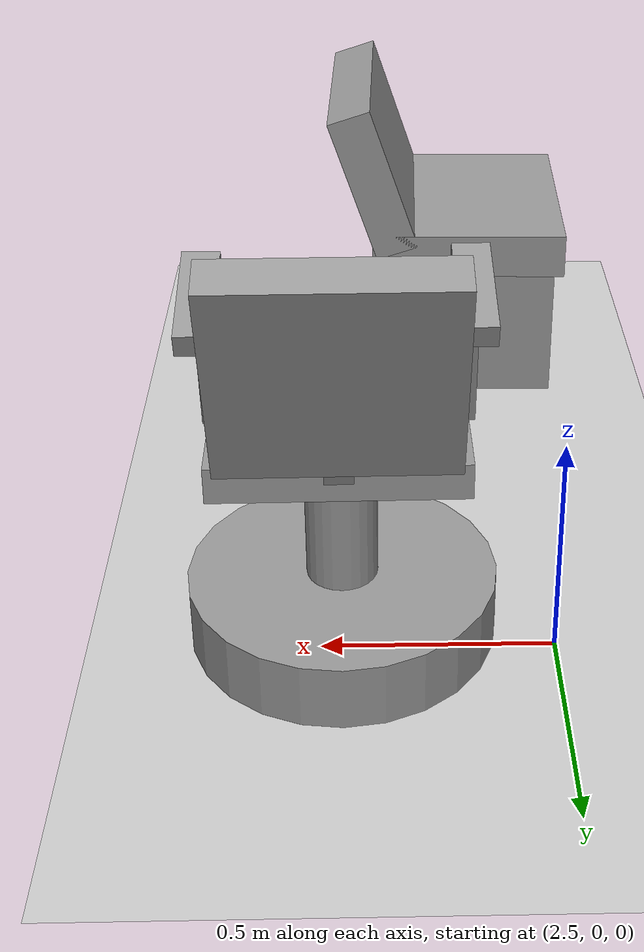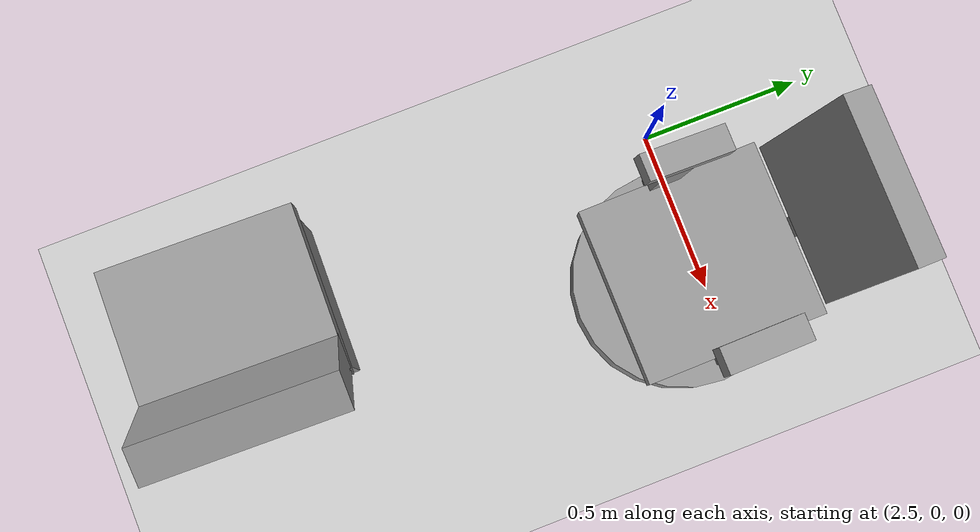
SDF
<sdf version="1.7">
 <world name="default">
  <model name="ground_plane">
   <static>1</static>
   <link name="link">
    <collision name="collision">
     <geometry><plane><normal>0 0 1</normal><size>100 100</size></plane></geometry>
     <surface>
      <contact><collide_bitmask>65535</collide_bitmask></contact>
      <friction><ode><mu>100</mu><mu2>50</mu2></ode></friction>
     </surface>
    </collision>
    <visual name="visual">
     <cast_shadows>0</cast_shadows>
     <geometry><plane><normal>0 0 1</normal><size>100 100</size></plane></geometry>
     <material>
      <script><uri>file://media/materials/scripts/gazebo.material</uri><name>Gazebo/Grey</name></script>
     </material>
    </visual>
   </link>
  </model>
  <model name="blue_roll_chair">
   <link name="link_1">
    <inertial>
     <mass>0.217639</mass>
     <inertia>
      <ixx>0.0144615</ixx>
      <ixy>0</ixy>
      <ixz>0</ixz>
      <iyy>0.0144615</iyy>
      <iyz>0</iyz>
      <izz>0.0272049</izz>
     </inertia>
    </inertial>
    <pose>0.08152 0 -0.528447 0 -0 0</pose>
    <visual name="visual">
     <geometry><cylinder><radius>0.3302</radius><length>0.14605</length></cylinder></geometry>
     <material>
      <lighting>1</lighting>
      <script><uri>file://media/materials/scripts/gazebo.material</uri><name>Gazebo/Grey</name></script>
      <shader type="pixel"><normal_map>__default__</normal_map></shader>
      <ambient>0.3 0.3 0.3 1</ambient>
      <diffuse>0.7 0.7 0.7 1</diffuse>
      <specular>0.01 0.01 0.01 1</specular>
      <emissive>0 0 0 1</emissive>
     </material>
    </visual>
    <collision name="collision">
     <geometry><cylinder><radius>0.3302</radius><length>0.14605</length></cylinder></geometry>
     <surface>
      <friction>
       <ode><mu>1</mu><mu2>1</mu2><fdir1>0 0 0</fdir1><slip1>0</slip1><slip2>0</slip2></ode>
       <torsional>
        <coefficient>1</coefficient>
        <patch_radius>0</patch_radius>
        <surface_radius>0</surface_radius>
        <use_patch_radius>1</use_patch_radius>
        <ode><slip>0</slip></ode>
       </torsional>
      </friction>
      <bounce><restitution_coefficient>0</restitution_coefficient><threshold>1e+06</threshold></bounce>
      <contact>
       <collide_without_contact>0</collide_without_contact>
       <collide_without_contact_bitmask>1</collide_without_contact_bitmask>
       <collide_bitmask>1</collide_bitmask>
       <ode>
        <soft_cfm>0</soft_cfm>
        <soft_erp>0.2</soft_erp>
        <kp>1e+13</kp>
        <kd>1</kd>
        <max_vel>0.01</max_vel>
        <min_depth>0</min_depth>
       </ode>
       <bullet>
        <split_impulse>1</split_impulse>
        <split_impulse_penetration_threshold>-0.01</split_impulse_penetration_threshold>
        <soft_cfm>0</soft_cfm>
        <soft_erp>0.2</soft_erp>
        <kp>1e+13</kp>
        <kd>1</kd>
       </bullet>
      </contact>
     </surface>
    </collision>
   </link>
   <link name="link_2">
    <inertial>
     <mass>0.148275</mass>
     <inertia>
      <ixx>0.00571396</ixx>
      <ixy>0</ixy>
      <ixz>0</ixz>
      <iyy>0.00571396</iyy>
      <iyz>0</iyz>
      <izz>0.00043048</izz>
     </inertia>
    </inertial>
    <pose>0.08152 0 -0.334772 0 -0 0</pose>
    <visual name="visual">
     <geometry><cylinder><radius>0.0762</radius><length>0.5334</length></cylinder></geometry>
     <material>
      <lighting>1</lighting>
      <script><uri>file://media/materials/scripts/gazebo.material</uri><name>Gazebo/Grey</name></script>
      <shader type="pixel"><normal_map>__default__</normal_map></shader>
      <ambient>0.3 0.3 0.3 1</ambient>
      <diffuse>0.7 0.7 0.7 1</diffuse>
      <specular>0.01 0.01 0.01 1</specular>
      <emissive>0 0 0 1</emissive>
     </material>
    </visual>
    <collision name="collision">
     <geometry><cylinder><radius>0.0762</radius><length>0.5334</length></cylinder></geometry>
     <surface>
      <friction>
       <ode><mu>1</mu><mu2>1</mu2><fdir1>0 0 0</fdir1><slip1>0</slip1><slip2>0</slip2></ode>
       <torsional>
        <coefficient>1</coefficient>
        <patch_radius>0</patch_radius>
        <surface_radius>0</surface_radius>
        <use_patch_radius>1</use_patch_radius>
        <ode><slip>0</slip></ode>
       </torsional>
      </friction>
      <bounce><restitution_coefficient>0</restitution_coefficient><threshold>1e+06</threshold></bounce>
      <contact>
       <collide_without_contact>0</collide_without_contact>
       <collide_without_contact_bitmask>1</collide_without_contact_bitmask>
       <collide_bitmask>1</collide_bitmask>
       <ode>
        <soft_cfm>0</soft_cfm>
        <soft_erp>0.2</soft_erp>
        <kp>1e+13</kp>
        <kd>1</kd>
        <max_vel>0.01</max_vel>
        <min_depth>0</min_depth>
       </ode>
       <bullet>
        <split_impulse>1</split_impulse>
        <split_impulse_penetration_threshold>-0.01</split_impulse_penetration_threshold>
        <soft_cfm>0</soft_cfm>
        <soft_erp>0.2</soft_erp>
        <kp>1e+13</kp>
        <kd>1</kd>
       </bullet>
      </contact>
     </surface>
    </collision>
   </link>
   <link name="link_3">
    <inertial>
     <mass>0.764476</mass>
     <inertia>
      <ixx>0.100938</ixx>
      <ixy>0</ixy>
      <ixz>0</ixz>
      <iyy>0.127413</iyy>
      <iyz>0</iyz>
      <izz>0.100938</izz>
     </inertia>
    </inertial>
    <pose>0.08152 0 -0.063372 0 -0 0</pose>
    <visual name="visual">
     <geometry><box><size>0.5207 0.508 0.0762</size></box></geometry>
     <material>
      <lighting>1</lighting>
      <script><uri>file://media/materials/scripts/gazebo.material</uri><name>Gazebo/Grey</name></script>
      <shader type="pixel"><normal_map>__default__</normal_map></shader>
      <ambient>0.3 0.3 0.3 1</ambient>
      <diffuse>0.7 0.7 0.7 1</diffuse>
      <specular>0.01 0.01 0.01 1</specular>
      <emissive>0 0 0 1</emissive>
     </material>
    </visual>
    <collision name="collision">
     <geometry><box><size>0.5207 0.508 0.0762</size></box></geometry>
     <surface>
      <friction>
       <ode><mu>1</mu><mu2>1</mu2><fdir1>0 0 0</fdir1><slip1>0</slip1><slip2>0</slip2></ode>
       <torsional>
        <coefficient>1</coefficient>
        <patch_radius>0</patch_radius>
        <surface_radius>0</surface_radius>
        <use_patch_radius>1</use_patch_radius>
        <ode><slip>0</slip></ode>
       </torsional>
      </friction>
      <bounce><restitution_coefficient>0</restitution_coefficient><threshold>1e+06</threshold></bounce>
      <contact>
       <collide_without_contact>0</collide_without_contact>
       <collide_without_contact_bitmask>1</collide_without_contact_bitmask>
       <collide_bitmask>1</collide_bitmask>
       <ode>
        <soft_cfm>0</soft_cfm>
        <soft_erp>0.2</soft_erp>
        <kp>1e+13</kp>
        <kd>1</kd>
        <max_vel>0.01</max_vel>
        <min_depth>0</min_depth>
       </ode>
       <bullet>
        <split_impulse>1</split_impulse>
        <split_impulse_penetration_threshold>-0.01</split_impulse_penetration_threshold>
        <soft_cfm>0</soft_cfm>
        <soft_erp>0.2</soft_erp>
        <kp>1e+13</kp>
        <kd>1</kd>
       </bullet>
      </contact>
     </surface>
    </collision>
   </link>
   <link name="link_5_clone">
    <inertial>
     <mass>0.0575704</mass>
     <inertia>
      <ixx>0.00481343</ixx>
      <ixy>0</ixy>
      <ixz>0</ixz>
      <iyy>0.00959506</iyy>
      <iyz>0</iyz>
      <izz>0.00481343</izz>
     </inertia>
    </inertial>
    <pose>0.08152 0.254 0.073742 0 -0.15708 0</pose>
    <visual name="visual">
     <geometry><box><size>0.0889 0.0381 0.2794</size></box></geometry>
     <material>
      <lighting>1</lighting>
      <script><uri>file://media/materials/scripts/gazebo.material</uri><name>Gazebo/Grey</name></script>
      <shader type="pixel"><normal_map>__default__</normal_map></shader>
      <ambient>0.3 0.3 0.3 1</ambient>
      <diffuse>0.7 0.7 0.7 1</diffuse>
      <specular>0.01 0.01 0.01 1</specular>
      <emissive>0 0 0 1</emissive>
     </material>
    </visual>
    <collision name="collision">
     <geometry><box><size>0.0889 0.0381 0.2794</size></box></geometry>
     <surface>
      <friction>
       <ode><mu>1</mu><mu2>1</mu2><fdir1>0 0 0</fdir1><slip1>0</slip1><slip2>0</slip2></ode>
       <torsional>
        <coefficient>1</coefficient>
        <patch_radius>0</patch_radius>
        <surface_radius>0</surface_radius>
        <use_patch_radius>1</use_patch_radius>
        <ode><slip>0</slip></ode>
       </torsional>
      </friction>
      <bounce><restitution_coefficient>0</restitution_coefficient><threshold>1e+06</threshold></bounce>
      <contact>
       <collide_without_contact>0</collide_without_contact>
       <collide_without_contact_bitmask>1</collide_without_contact_bitmask>
       <collide_bitmask>1</collide_bitmask>
       <ode>
        <soft_cfm>0</soft_cfm>
        <soft_erp>0.2</soft_erp>
        <kp>1e+13</kp>
        <kd>1</kd>
        <max_vel>0.01</max_vel>
        <min_depth>0</min_depth>
       </ode>
       <bullet>
        <split_impulse>1</split_impulse>
        <split_impulse_penetration_threshold>-0.01</split_impulse_penetration_threshold>
        <soft_cfm>0</soft_cfm>
        <soft_erp>0.2</soft_erp>
        <kp>1e+13</kp>
        <kd>1</kd>
       </bullet>
      </contact>
     </surface>
    </collision>
   </link>
   <link name="link_5_clone_clone">
    <inertial>
     <mass>0.0575704</mass>
     <inertia>
      <ixx>0.00481343</ixx>
      <ixy>0</ixy>
      <ixz>0</ixz>
      <iyy>0.00959506</iyy>
      <iyz>0</iyz>
      <izz>0.00481343</izz>
     </inertia>
    </inertial>
    <pose>0.078087 -0.254 0.073742 0 -0.15708 0</pose>
    <visual name="visual">
     <geometry><box><size>0.0889 0.0381 0.2794</size></box></geometry>
     <material>
      <lighting>1</lighting>
      <script><uri>file://media/materials/scripts/gazebo.material</uri><name>Gazebo/Grey</name></script>
      <shader type="pixel"><normal_map>__default__</normal_map></shader>
      <ambient>0.3 0.3 0.3 1</ambient>
      <diffuse>0.7 0.7 0.7 1</diffuse>
      <specular>0.01 0.01 0.01 1</specular>
      <emissive>0 0 0 1</emissive>
     </material>
    </visual>
    <collision name="collision">
     <geometry><box><size>0.0889 0.0381 0.2794</size></box></geometry>
     <surface>
      <friction>
       <ode><mu>1</mu><mu2>1</mu2><fdir1>0 0 0</fdir1><slip1>0</slip1><slip2>0</slip2></ode>
       <torsional>
        <coefficient>1</coefficient>
        <patch_radius>0</patch_radius>
        <surface_radius>0</surface_radius>
        <use_patch_radius>1</use_patch_radius>
        <ode><slip>0</slip></ode>
       </torsional>
      </friction>
      <bounce><restitution_coefficient>0</restitution_coefficient><threshold>1e+06</threshold></bounce>
      <contact>
       <collide_without_contact>0</collide_without_contact>
       <collide_without_contact_bitmask>1</collide_without_contact_bitmask>
       <collide_bitmask>1</collide_bitmask>
       <ode>
        <soft_cfm>0</soft_cfm>
        <soft_erp>0.2</soft_erp>
        <kp>1e+13</kp>
        <kd>1</kd>
        <max_vel>0.01</max_vel>
        <min_depth>0</min_depth>
       </ode>
       <bullet>
        <split_impulse>1</split_impulse>
        <split_impulse_penetration_threshold>-0.01</split_impulse_penetration_threshold>
        <soft_cfm>0</soft_cfm>
        <soft_erp>0.2</soft_erp>
        <kp>1e+13</kp>
        <kd>1</kd>
       </bullet>
      </contact>
     </surface>
    </collision>
   </link>
   <link name="link_6_clone">
    <inertial>
     <mass>0.120511</mass>
     <inertia>
      <ixx>0.0101882</ixx>
      <ixy>0</ixy>
      <ixz>0</ixz>
      <iyy>0.0200851</iyy>
      <iyz>0</iyz>
      <izz>0.0101882</izz>
     </inertia>
    </inertial>
    <pose>0.05612 0.26494 0.202779 0 -0.226893 0</pose>
    <visual name="visual">
     <geometry><box><size>0.254 0.0762 0.047625</size></box></geometry>
     <material>
      <lighting>1</lighting>
      <script><uri>file://media/materials/scripts/gazebo.material</uri><name>Gazebo/Grey</name></script>
      <shader type="pixel"><normal_map>__default__</normal_map></shader>
      <ambient>0.3 0.3 0.3 1</ambient>
      <diffuse>0.7 0.7 0.7 1</diffuse>
      <specular>0.01 0.01 0.01 1</specular>
      <emissive>0 0 0 1</emissive>
     </material>
    </visual>
    <collision name="collision">
     <geometry><box><size>0.254 0.0762 0.047625</size></box></geometry>
     <surface>
      <friction>
       <ode><mu>1</mu><mu2>1</mu2><fdir1>0 0 0</fdir1><slip1>0</slip1><slip2>0</slip2></ode>
       <torsional>
        <coefficient>1</coefficient>
        <patch_radius>0</patch_radius>
        <surface_radius>0</surface_radius>
        <use_patch_radius>1</use_patch_radius>
        <ode><slip>0</slip></ode>
       </torsional>
      </friction>
      <bounce><restitution_coefficient>0</restitution_coefficient><threshold>1e+06</threshold></bounce>
      <contact>
       <collide_without_contact>0</collide_without_contact>
       <collide_without_contact_bitmask>1</collide_without_contact_bitmask>
       <collide_bitmask>1</collide_bitmask>
       <ode>
        <soft_cfm>0</soft_cfm>
        <soft_erp>0.2</soft_erp>
        <kp>1e+13</kp>
        <kd>1</kd>
        <max_vel>0.01</max_vel>
        <min_depth>0</min_depth>
       </ode>
       <bullet>
        <split_impulse>1</split_impulse>
        <split_impulse_penetration_threshold>-0.01</split_impulse_penetration_threshold>
        <soft_cfm>0</soft_cfm>
        <soft_erp>0.2</soft_erp>
        <kp>1e+13</kp>
        <kd>1</kd>
       </bullet>
      </contact>
     </surface>
    </collision>
   </link>
   <link name="link_6_clone_clone">
    <inertial>
     <mass>0.120511</mass>
     <inertia>
      <ixx>0.0101882</ixx>
      <ixy>0</ixy>
      <ixz>0</ixz>
      <iyy>0.0200851</iyy>
      <iyz>0</iyz>
      <izz>0.0101882</izz>
     </inertia>
    </inertial>
    <pose>0.05612 -0.26494 0.213442 0 -0.226893 0</pose>
    <visual name="visual">
     <geometry><box><size>0.254 0.0762 0.047625</size></box></geometry>
     <material>
      <lighting>1</lighting>
      <script><uri>file://media/materials/scripts/gazebo.material</uri><name>Gazebo/Grey</name></script>
      <shader type="pixel"><normal_map>__default__</normal_map></shader>
      <ambient>0.3 0.3 0.3 1</ambient>
      <diffuse>0.7 0.7 0.7 1</diffuse>
      <specular>0.01 0.01 0.01 1</specular>
      <emissive>0 0 0 1</emissive>
     </material>
    </visual>
    <collision name="collision">
     <geometry><box><size>0.254 0.0762 0.047625</size></box></geometry>
     <surface>
      <friction>
       <ode><mu>1</mu><mu2>1</mu2><fdir1>0 0 0</fdir1><slip1>0</slip1><slip2>0</slip2></ode>
       <torsional>
        <coefficient>1</coefficient>
        <patch_radius>0</patch_radius>
        <surface_radius>0</surface_radius>
        <use_patch_radius>1</use_patch_radius>
        <ode><slip>0</slip></ode>
       </torsional>
      </friction>
      <bounce><restitution_coefficient>0</restitution_coefficient><threshold>1e+06</threshold></bounce>
      <contact>
       <collide_without_contact>0</collide_without_contact>
       <collide_without_contact_bitmask>1</collide_without_contact_bitmask>
       <collide_bitmask>1</collide_bitmask>
       <ode>
        <soft_cfm>0</soft_cfm>
        <soft_erp>0.2</soft_erp>
        <kp>1e+13</kp>
        <kd>1</kd>
        <max_vel>0.01</max_vel>
        <min_depth>0</min_depth>
       </ode>
       <bullet>
        <split_impulse>1</split_impulse>
        <split_impulse_penetration_threshold>-0.01</split_impulse_penetration_threshold>
        <soft_cfm>0</soft_cfm>
        <soft_erp>0.2</soft_erp>
        <kp>1e+13</kp>
        <kd>1</kd>
       </bullet>
      </contact>
     </surface>
    </collision>
   </link>
   <link name="link_8">
    <inertial>
     <mass>0.748762</mass>
     <inertia>
      <ixx>0.0973797</ixx>
      <ixy>0</ixy>
      <ixz>0</ixz>
      <iyy>0.0973797</iyy>
      <iyz>0</iyz>
      <izz>0.124794</izz>
     </inertia>
    </inertial>
    <pose>-0.23598 0 0.127128 0 -0.270526 0</pose>
    <visual name="visual">
     <geometry><box><size>0.00635 0.05715 0.381</size></box></geometry>
     <material>
      <lighting>1</lighting>
      <script><uri>file://media/materials/scripts/gazebo.material</uri><name>Gazebo/Grey</name></script>
      <shader type="pixel"><normal_map>__default__</normal_map></shader>
      <ambient>0.3 0.3 0.3 1</ambient>
      <diffuse>0.7 0.7 0.7 1</diffuse>
      <specular>0.01 0.01 0.01 1</specular>
      <emissive>0 0 0 1</emissive>
     </material>
    </visual>
    <collision name="collision">
     <geometry><box><size>0.00635 0.05715 0.381</size></box></geometry>
     <surface>
      <friction>
       <ode><mu>1</mu><mu2>1</mu2><fdir1>0 0 0</fdir1><slip1>0</slip1><slip2>0</slip2></ode>
       <torsional>
        <coefficient>1</coefficient>
        <patch_radius>0</patch_radius>
        <surface_radius>0</surface_radius>
        <use_patch_radius>1</use_patch_radius>
        <ode><slip>0</slip></ode>
       </torsional>
      </friction>
      <bounce><restitution_coefficient>0</restitution_coefficient><threshold>1e+06</threshold></bounce>
      <contact>
       <collide_without_contact>0</collide_without_contact>
       <collide_without_contact_bitmask>1</collide_without_contact_bitmask>
       <collide_bitmask>1</collide_bitmask>
       <ode>
        <soft_cfm>0</soft_cfm>
        <soft_erp>0.2</soft_erp>
        <kp>1e+13</kp>
        <kd>1</kd>
        <max_vel>0.01</max_vel>
        <min_depth>0</min_depth>
       </ode>
       <bullet>
        <split_impulse>1</split_impulse>
        <split_impulse_penetration_threshold>-0.01</split_impulse_penetration_threshold>
        <soft_cfm>0</soft_cfm>
        <soft_erp>0.2</soft_erp>
        <kp>1e+13</kp>
        <kd>1</kd>
       </bullet>
      </contact>
     </surface>
    </collision>
   </link>
   <link name="link_9">
    <inertial>
     <mass>0.182933</mass>
     <inertia>
      <ixx>0.0304888</ixx>
      <ixy>0</ixy>
      <ixz>0</ixz>
      <iyy>0.0157545</iyy>
      <iyz>0</iyz>
      <izz>0.0157545</izz>
     </inertia>
    </inertial>
    <pose>-0.28043 0 0.235757 0 -0.296706 0</pose>
    <visual name="visual">
     <geometry><box><size>0.085725 0.4572 0.4572</size></box></geometry>
     <material>
      <lighting>1</lighting>
      <script><uri>file://media/materials/scripts/gazebo.material</uri><name>Gazebo/Grey</name></script>
      <shader type="pixel"><normal_map>__default__</normal_map></shader>
      <ambient>0.3 0.3 0.3 1</ambient>
      <diffuse>0.7 0.7 0.7 1</diffuse>
      <specular>0.01 0.01 0.01 1</specular>
      <emissive>0 0 0 1</emissive>
     </material>
    </visual>
    <collision name="collision">
     <geometry><box><size>0.085725 0.4572 0.4572</size></box></geometry>
     <surface>
      <friction>
       <ode><mu>1</mu><mu2>1</mu2><fdir1>0 0 0</fdir1><slip1>0</slip1><slip2>0</slip2></ode>
       <torsional>
        <coefficient>1</coefficient>
        <patch_radius>0</patch_radius>
        <surface_radius>0</surface_radius>
        <use_patch_radius>1</use_patch_radius>
        <ode><slip>0</slip></ode>
       </torsional>
      </friction>
      <bounce><restitution_coefficient>0</restitution_coefficient><threshold>1e+06</threshold></bounce>
      <contact>
       <collide_without_contact>0</collide_without_contact>
       <collide_without_contact_bitmask>1</collide_without_contact_bitmask>
       <collide_bitmask>1</collide_bitmask>
       <ode>
        <soft_cfm>0</soft_cfm>
        <soft_erp>0.2</soft_erp>
        <kp>1e+13</kp>
        <kd>1</kd>
        <max_vel>0.01</max_vel>
        <min_depth>0</min_depth>
       </ode>
       <bullet>
        <split_impulse>1</split_impulse>
        <split_impulse_penetration_threshold>-0.01</split_impulse_penetration_threshold>
        <soft_cfm>0</soft_cfm>
        <soft_erp>0.2</soft_erp>
        <kp>1e+13</kp>
        <kd>1</kd>
       </bullet>
      </contact>
     </surface>
    </collision>
   </link>
   <joint name="link_2_JOINT_1" type="fixed">
    <parent>link_2</parent>
    <child>link_1</child>
    <physics>
     <ode><limit><cfm>0</cfm><erp>0.2</erp></limit><suspension><cfm>0</cfm><erp>0.2</erp></suspension></ode>
    </physics>
   </joint>
   <joint name="link_3_JOINT_0" type="fixed">
    <parent>link_3</parent>
    <child>link_2</child>
    <physics>
     <ode><limit><cfm>0</cfm><erp>0.2</erp></limit><suspension><cfm>0</cfm><erp>0.2</erp></suspension></ode>
    </physics>
   </joint>
   <joint name="link_3_JOINT_2" type="fixed">
    <parent>link_3</parent>
    <child>link_5_clone_clone</child>
    <physics>
     <ode><limit><cfm>0</cfm><erp>0.2</erp></limit><suspension><cfm>0</cfm><erp>0.2</erp></suspension></ode>
    </physics>
   </joint>
   <joint name="link_3_JOINT_3" type="fixed">
    <parent>link_3</parent>
    <child>link_5_clone</child>
    <physics>
     <ode><limit><cfm>0</cfm><erp>0.2</erp></limit><suspension><cfm>0</cfm><erp>0.2</erp></suspension></ode>
    </physics>
   </joint>
   <joint name="link_3_JOINT_6" type="fixed">
    <parent>link_3</parent>
    <child>link_8</child>
    <physics>
     <ode><limit><cfm>0</cfm><erp>0.2</erp></limit><suspension><cfm>0</cfm><erp>0.2</erp></suspension></ode>
    </physics>
   </joint>
   <joint name="link_3_JOINT_7" type="fixed">
    <parent>link_3</parent>
    <child>link_9</child>
    <physics>
     <ode><limit><cfm>0</cfm><erp>0.2</erp></limit><suspension><cfm>0</cfm><erp>0.2</erp></suspension></ode>
    </physics>
   </joint>
   <joint name="link_5_clone_JOINT_4" type="fixed">
    <parent>link_5_clone</parent>
    <child>link_6_clone</child>
    <physics>
     <ode><limit><cfm>0</cfm><erp>0.2</erp></limit><suspension><cfm>0</cfm><erp>0.2</erp></suspension></ode>
    </physics>
   </joint>
   <joint name="link_5_clone_clone_JOINT_5" type="fixed">
    <parent>link_5_clone_clone</parent>
    <child>link_6_clone_clone</child>
    <physics>
     <ode><limit><cfm>0</cfm><erp>0.2</erp></limit><suspension><cfm>0</cfm><erp>0.2</erp></suspension></ode>
    </physics>
   </joint>
   <static>0</static>
   <pose>2.95215 0.001786 0.601472 0 2e-06 -1.55943</pose>
  </model>
  <model name="gray_lean_chair">
   <link name="link_0">
    <inertial>
     <mass>0.288675</mass>
     <inertia>
      <ixx>0.119705</ixx>
      <ixy>0</ixy>
      <ixz>0</ixz>
      <iyy>0.0244605</iyy>
      <iyz>0</iyz>
      <izz>0.143357</izz>
     </inertia>
    </inertial>
    <pose>0 0.0625 0.038512 0 -0 0</pose>
    <visual name="visual">
     <geometry><box><size>0.5842 0.508 0.1143</size></box></geometry>
     <material>
      <lighting>1</lighting>
      <script><uri>file://media/materials/scripts/gazebo.material</uri><name>Gazebo/Grey</name></script>
      <shader type="pixel"><normal_map>__default__</normal_map></shader>
      <ambient>0.3 0.3 0.3 1</ambient>
      <diffuse>0.7 0.7 0.7 1</diffuse>
      <specular>0.01 0.01 0.01 1</specular>
      <emissive>0 0 0 1</emissive>
     </material>
    </visual>
    <collision name="collision">
     <geometry><box><size>0.5842 0.508 0.1143</size></box></geometry>
     <surface>
      <friction>
       <ode><mu>1</mu><mu2>1</mu2><fdir1>0 0 0</fdir1><slip1>0</slip1><slip2>0</slip2></ode>
       <torsional>
        <coefficient>1</coefficient>
        <patch_radius>0</patch_radius>
        <surface_radius>0</surface_radius>
        <use_patch_radius>1</use_patch_radius>
        <ode><slip>0</slip></ode>
       </torsional>
      </friction>
      <bounce><restitution_coefficient>0</restitution_coefficient><threshold>1e+06</threshold></bounce>
      <contact>
       <collide_without_contact>0</collide_without_contact>
       <collide_without_contact_bitmask>1</collide_without_contact_bitmask>
       <collide_bitmask>1</collide_bitmask>
       <ode>
        <soft_cfm>0</soft_cfm>
        <soft_erp>0.2</soft_erp>
        <kp>1e+13</kp>
        <kd>1</kd>
        <max_vel>0.01</max_vel>
        <min_depth>0</min_depth>
       </ode>
       <bullet>
        <split_impulse>1</split_impulse>
        <split_impulse_penetration_threshold>-0.01</split_impulse_penetration_threshold>
        <soft_cfm>0</soft_cfm>
        <soft_erp>0.2</soft_erp>
        <kp>1e+13</kp>
        <kd>1</kd>
       </bullet>
      </contact>
     </surface>
    </collision>
   </link>
   <link name="link_1">
    <inertial>
     <mass>0.0681541</mass>
     <inertia>
      <ixx>0.0073775</ixx>
      <ixy>0</ixy>
      <ixz>0</ixz>
      <iyy>0.00576774</iyy>
      <iyz>0</iyz>
      <izz>0.00178623</izz>
     </inertia>
    </inertial>
    <pose>0.25 0.0625 -0.136938 0 1.5707 0</pose>
    <visual name="visual">
     <geometry><box><size>0.457201 0.4572 0.0762</size></box></geometry>
     <material>
      <lighting>1</lighting>
      <script><uri>file://media/materials/scripts/gazebo.material</uri><name>Gazebo/Grey</name></script>
      <shader type="pixel"><normal_map>__default__</normal_map></shader>
      <ambient>0.3 0.3 0.3 1</ambient>
      <diffuse>0.7 0.7 0.7 1</diffuse>
      <specular>0.01 0.01 0.01 1</specular>
      <emissive>0 0 0 1</emissive>
     </material>
    </visual>
    <collision name="collision">
     <geometry><box><size>0.4572 0.4572 0.0762</size></box></geometry>
     <surface>
      <friction>
       <ode><mu>1</mu><mu2>1</mu2><fdir1>0 0 0</fdir1><slip1>0</slip1><slip2>0</slip2></ode>
       <torsional>
        <coefficient>1</coefficient>
        <patch_radius>0</patch_radius>
        <surface_radius>0</surface_radius>
        <use_patch_radius>1</use_patch_radius>
        <ode><slip>0</slip></ode>
       </torsional>
      </friction>
      <bounce><restitution_coefficient>0</restitution_coefficient><threshold>1e+06</threshold></bounce>
      <contact>
       <collide_without_contact>0</collide_without_contact>
       <collide_without_contact_bitmask>1</collide_without_contact_bitmask>
       <collide_bitmask>1</collide_bitmask>
       <ode>
        <soft_cfm>0</soft_cfm>
        <soft_erp>0.2</soft_erp>
        <kp>1e+13</kp>
        <kd>1</kd>
        <max_vel>0.01</max_vel>
        <min_depth>0</min_depth>
       </ode>
       <bullet>
        <split_impulse>1</split_impulse>
        <split_impulse_penetration_threshold>-0.01</split_impulse_penetration_threshold>
        <soft_cfm>0</soft_cfm>
        <soft_erp>0.2</soft_erp>
        <kp>1e+13</kp>
        <kd>1</kd>
       </bullet>
      </contact>
     </surface>
    </collision>
   </link>
   <link name="link_1_clone">
    <inertial>
     <mass>0.0681541</mass>
     <inertia>
      <ixx>0.0073775</ixx>
      <ixy>0</ixy>
      <ixz>0</ixz>
      <iyy>0.00576774</iyy>
      <iyz>0</iyz>
      <izz>0.00178623</izz>
     </inertia>
    </inertial>
    <pose>-0.25 0.0625 -0.136938 0 1.5707 0</pose>
    <visual name="visual">
     <geometry><box><size>0.457201 0.4572 0.0762</size></box></geometry>
     <material>
      <lighting>1</lighting>
      <script><uri>file://media/materials/scripts/gazebo.material</uri><name>Gazebo/Grey</name></script>
      <shader type="pixel"><normal_map>__default__</normal_map></shader>
      <ambient>0.3 0.3 0.3 1</ambient>
      <diffuse>0.7 0.7 0.7 1</diffuse>
      <specular>0.01 0.01 0.01 1</specular>
      <emissive>0 0 0 1</emissive>
     </material>
    </visual>
    <collision name="collision">
     <geometry><box><size>0.4572 0.4572 0.0762</size></box></geometry>
     <surface>
      <friction>
       <ode><mu>1</mu><mu2>1</mu2><fdir1>0 0 0</fdir1><slip1>0</slip1><slip2>0</slip2></ode>
       <torsional>
        <coefficient>1</coefficient>
        <patch_radius>0</patch_radius>
        <surface_radius>0</surface_radius>
        <use_patch_radius>1</use_patch_radius>
        <ode><slip>0</slip></ode>
       </torsional>
      </friction>
      <bounce><restitution_coefficient>0</restitution_coefficient><threshold>1e+06</threshold></bounce>
      <contact>
       <collide_without_contact>0</collide_without_contact>
       <collide_without_contact_bitmask>1</collide_without_contact_bitmask>
       <collide_bitmask>1</collide_bitmask>
       <ode>
        <soft_cfm>0</soft_cfm>
        <soft_erp>0.2</soft_erp>
        <kp>1e+13</kp>
        <kd>1</kd>
        <max_vel>0.01</max_vel>
        <min_depth>0</min_depth>
       </ode>
       <bullet>
        <split_impulse>1</split_impulse>
        <split_impulse_penetration_threshold>-0.01</split_impulse_penetration_threshold>
        <soft_cfm>0</soft_cfm>
        <soft_erp>0.2</soft_erp>
        <kp>1e+13</kp>
        <kd>1</kd>
       </bullet>
      </contact>
     </surface>
    </collision>
   </link>
   <link name="link_2">
    <inertial>
     <mass>0.0761033</mass>
     <inertia>
      <ixx>0.00637868</ixx>
      <ixy>0</ixy>
      <ixz>0</ixz>
      <iyy>0.0126839</iyy>
      <iyz>0</iyz>
      <izz>0.00637868</izz>
     </inertia>
    </inertial>
    <pose>0 -0.1875 0.235363 0.322886 -0 0</pose>
    <visual name="visual">
     <geometry><box><size>0.5842 0.1143 0.3937</size></box></geometry>
     <material>
      <lighting>1</lighting>
      <script><uri>file://media/materials/scripts/gazebo.material</uri><name>Gazebo/Grey</name></script>
      <shader type="pixel"><normal_map>__default__</normal_map></shader>
      <ambient>0.3 0.3 0.3 1</ambient>
      <diffuse>0.7 0.7 0.7 1</diffuse>
      <specular>0.01 0.01 0.01 1</specular>
      <emissive>0 0 0 1</emissive>
     </material>
    </visual>
    <collision name="collision">
     <geometry><box><size>0.5842 0.1143 0.3937</size></box></geometry>
     <surface>
      <friction>
       <ode><mu>1</mu><mu2>1</mu2><fdir1>0 0 0</fdir1><slip1>0</slip1><slip2>0</slip2></ode>
       <torsional>
        <coefficient>1</coefficient>
        <patch_radius>0</patch_radius>
        <surface_radius>0</surface_radius>
        <use_patch_radius>1</use_patch_radius>
        <ode><slip>0</slip></ode>
       </torsional>
      </friction>
      <bounce><restitution_coefficient>0</restitution_coefficient><threshold>1e+06</threshold></bounce>
      <contact>
       <collide_without_contact>0</collide_without_contact>
       <collide_without_contact_bitmask>1</collide_without_contact_bitmask>
       <collide_bitmask>1</collide_bitmask>
       <ode>
        <soft_cfm>0</soft_cfm>
        <soft_erp>0.2</soft_erp>
        <kp>1e+13</kp>
        <kd>1</kd>
        <max_vel>0.01</max_vel>
        <min_depth>0</min_depth>
       </ode>
       <bullet>
        <split_impulse>1</split_impulse>
        <split_impulse_penetration_threshold>-0.01</split_impulse_penetration_threshold>
        <soft_cfm>0</soft_cfm>
        <soft_erp>0.2</soft_erp>
        <kp>1e+13</kp>
        <kd>1</kd>
       </bullet>
      </contact>
     </surface>
    </collision>
   </link>
   <joint name="link_0_JOINT_0" type="fixed">
    <parent>link_0</parent>
    <child>link_2</child>
    <physics>
     <ode><limit><cfm>0</cfm><erp>0.2</erp></limit><suspension><cfm>0</cfm><erp>0.2</erp></suspension></ode>
    </physics>
   </joint>
   <joint name="link_0_JOINT_1" type="fixed">
    <parent>link_0</parent>
    <child>link_1</child>
    <physics>
     <ode><limit><cfm>0</cfm><erp>0.2</erp></limit><suspension><cfm>0</cfm><erp>0.2</erp></suspension></ode>
    </physics>
   </joint>
   <joint name="link_0_JOINT_2" type="fixed">
    <parent>link_0</parent>
    <child>link_1_clone</child>
    <physics>
     <ode><limit><cfm>0</cfm><erp>0.2</erp></limit><suspension><cfm>0</cfm><erp>0.2</erp></suspension></ode>
    </physics>
   </joint>
   <static>0</static>
   <pose>2.68156 -1.37329 0.365542 0 2e-06 1.54737</pose>
  </model>
 </world>
</sdf>
